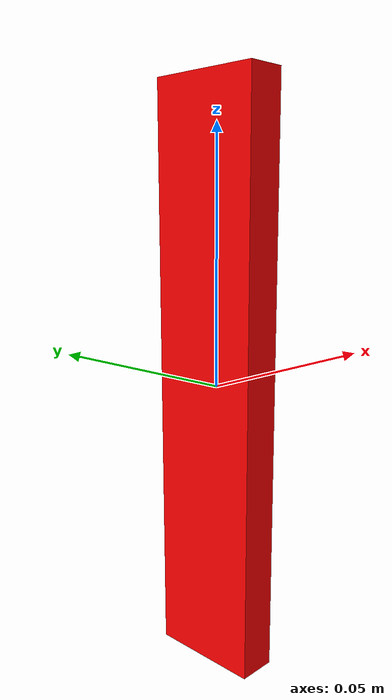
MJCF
<?xml version="1.0" encoding="utf-8"?>
<mujoco>
	<asset>
		<material name="block_mat" rgba="1.0 0 0 1.0" specular="0.25" shininess="0.10" reflectance="0.10"></material>
	</asset>
	<worldbody>
		<body name="domino">
			<geom type="box" material="block_mat" size="0.00394 0.01167 0.05835"></geom>
			<joint type="free"/>
		</body>
	</worldbody>
</mujoco>
